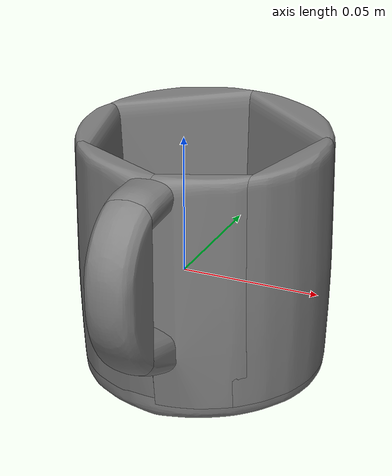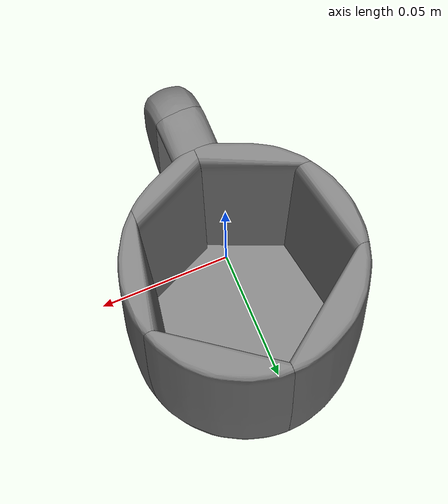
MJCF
<?xml version="1.0" ?>
<mujoco model="039_mug_1">
  <asset>
    <mesh name="039_mug_1_mesh" file="039_mug_1.stl" scale="0.065 0.065 0.065"/>
    <mesh name="039_mug_part_0" file="/home/yuan/ssd/datagen/datagen_July24/assets/objects/039_mug/1/decomposed/039_mug_1_decomposed_0.stl" scale="0.065 0.065 0.065"/>
    <mesh name="039_mug_part_1" file="/home/yuan/ssd/datagen/datagen_July24/assets/objects/039_mug/1/decomposed/039_mug_1_decomposed_1.stl" scale="0.065 0.065 0.065"/>
    <mesh name="039_mug_part_2" file="/home/yuan/ssd/datagen/datagen_July24/assets/objects/039_mug/1/decomposed/039_mug_1_decomposed_2.stl" scale="0.065 0.065 0.065"/>
    <mesh name="039_mug_part_3" file="/home/yuan/ssd/datagen/datagen_July24/assets/objects/039_mug/1/decomposed/039_mug_1_decomposed_3.stl" scale="0.065 0.065 0.065"/>
    <mesh name="039_mug_part_4" file="/home/yuan/ssd/datagen/datagen_July24/assets/objects/039_mug/1/decomposed/039_mug_1_decomposed_4.stl" scale="0.065 0.065 0.065"/>
    <mesh name="039_mug_part_5" file="/home/yuan/ssd/datagen/datagen_July24/assets/objects/039_mug/1/decomposed/039_mug_1_decomposed_5.stl" scale="0.065 0.065 0.065"/>
    <mesh name="039_mug_part_6" file="/home/yuan/ssd/datagen/datagen_July24/assets/objects/039_mug/1/decomposed/039_mug_1_decomposed_6.stl" scale="0.065 0.065 0.065"/>
    <mesh name="039_mug_part_7" file="/home/yuan/ssd/datagen/datagen_July24/assets/objects/039_mug/1/decomposed/039_mug_1_decomposed_7.stl" scale="0.065 0.065 0.065"/>
    <mesh name="039_mug_part_8" file="/home/yuan/ssd/datagen/datagen_July24/assets/objects/039_mug/1/decomposed/039_mug_1_decomposed_8.stl" scale="0.065 0.065 0.065"/>
    <mesh name="039_mug_part_9" file="/home/yuan/ssd/datagen/datagen_July24/assets/objects/039_mug/1/decomposed/039_mug_1_decomposed_9.stl" scale="0.065 0.065 0.065"/>
  </asset>
  <worldbody>
    <body name="039_mug">
      <geom name="039_mug_geom_0" type="mesh" mesh="039_mug_part_0"/>
      <geom name="039_mug_geom_1" type="mesh" mesh="039_mug_part_1"/>
      <geom name="039_mug_geom_2" type="mesh" mesh="039_mug_part_2"/>
      <geom name="039_mug_geom_3" type="mesh" mesh="039_mug_part_3"/>
      <geom name="039_mug_geom_4" type="mesh" mesh="039_mug_part_4"/>
      <geom name="039_mug_geom_5" type="mesh" mesh="039_mug_part_5"/>
      <geom name="039_mug_geom_6" type="mesh" mesh="039_mug_part_6"/>
      <geom name="039_mug_geom_7" type="mesh" mesh="039_mug_part_7"/>
      <geom name="039_mug_geom_8" type="mesh" mesh="039_mug_part_8"/>
      <geom name="039_mug_geom_9" type="mesh" mesh="039_mug_part_9"/>
    </body>
  </worldbody>
</mujoco>
